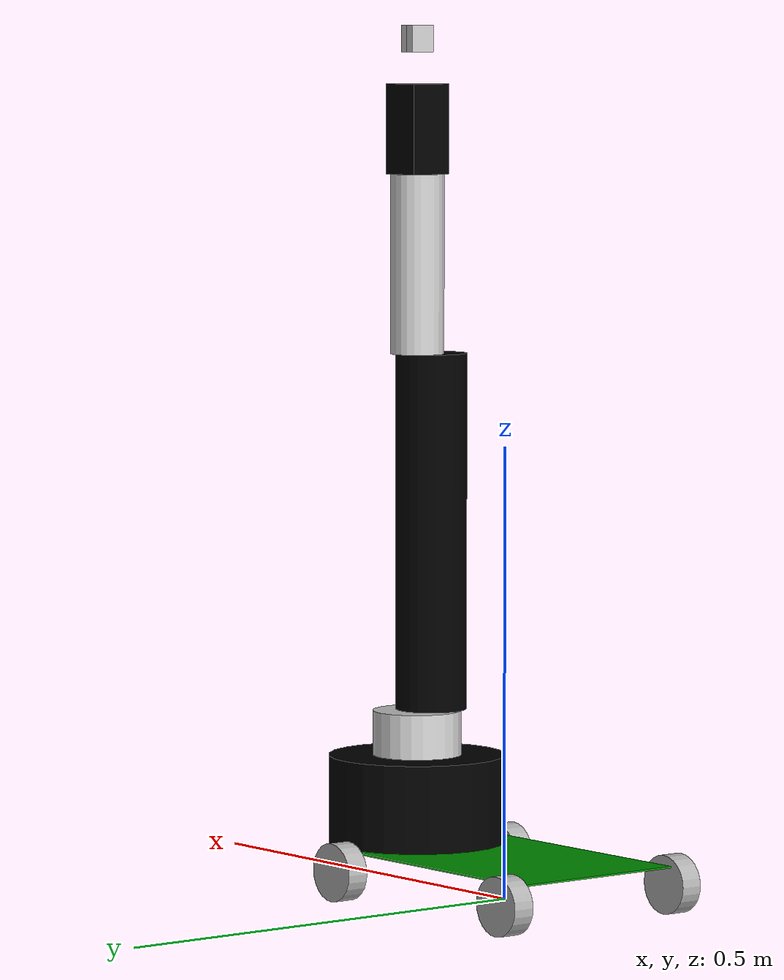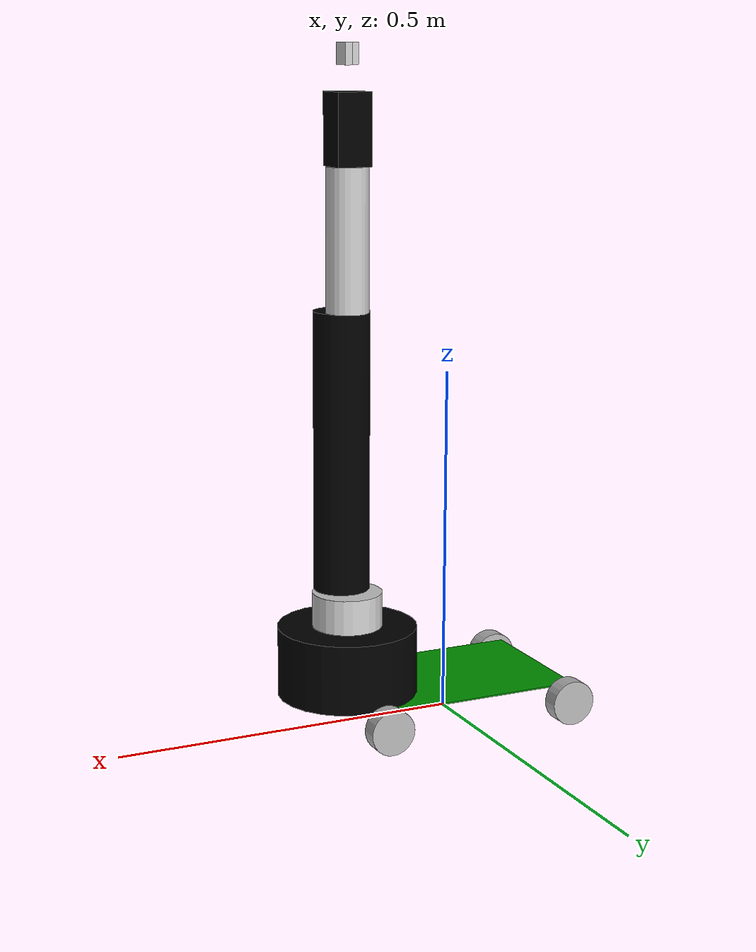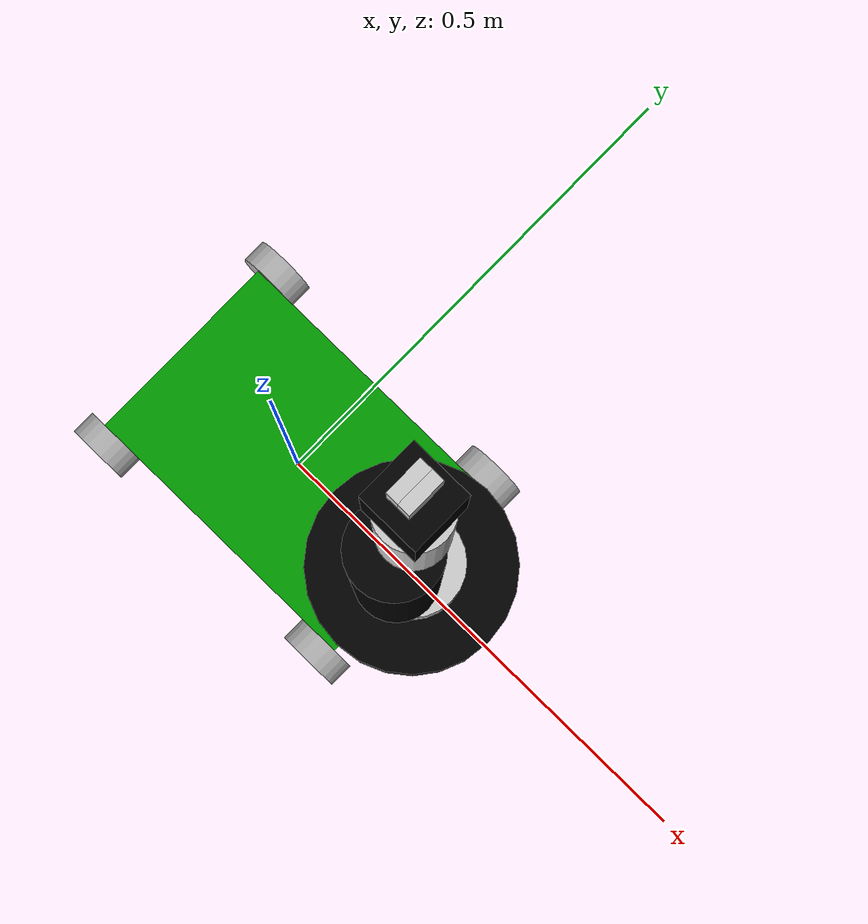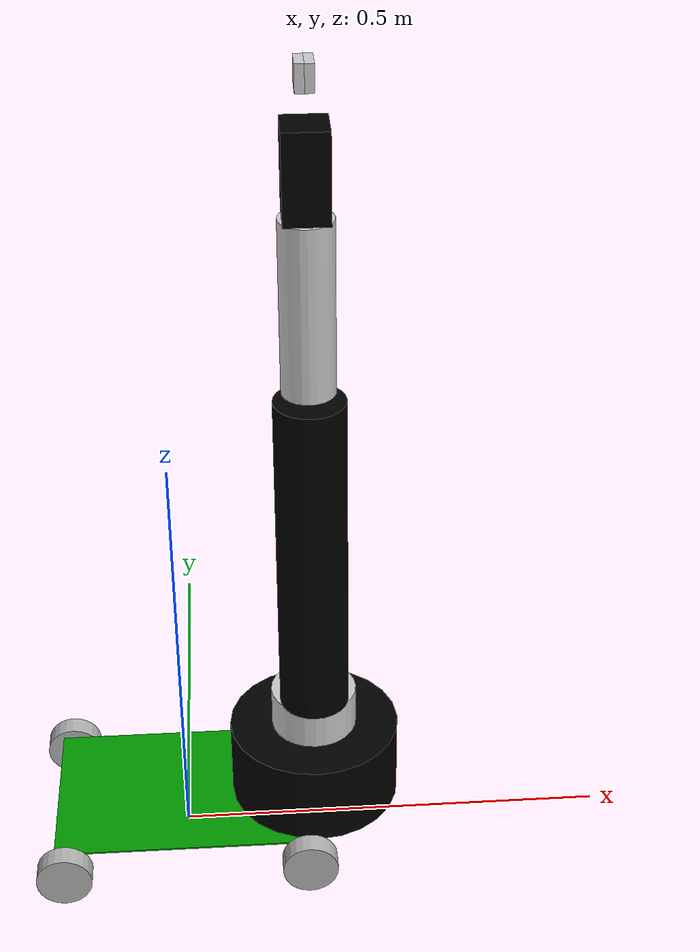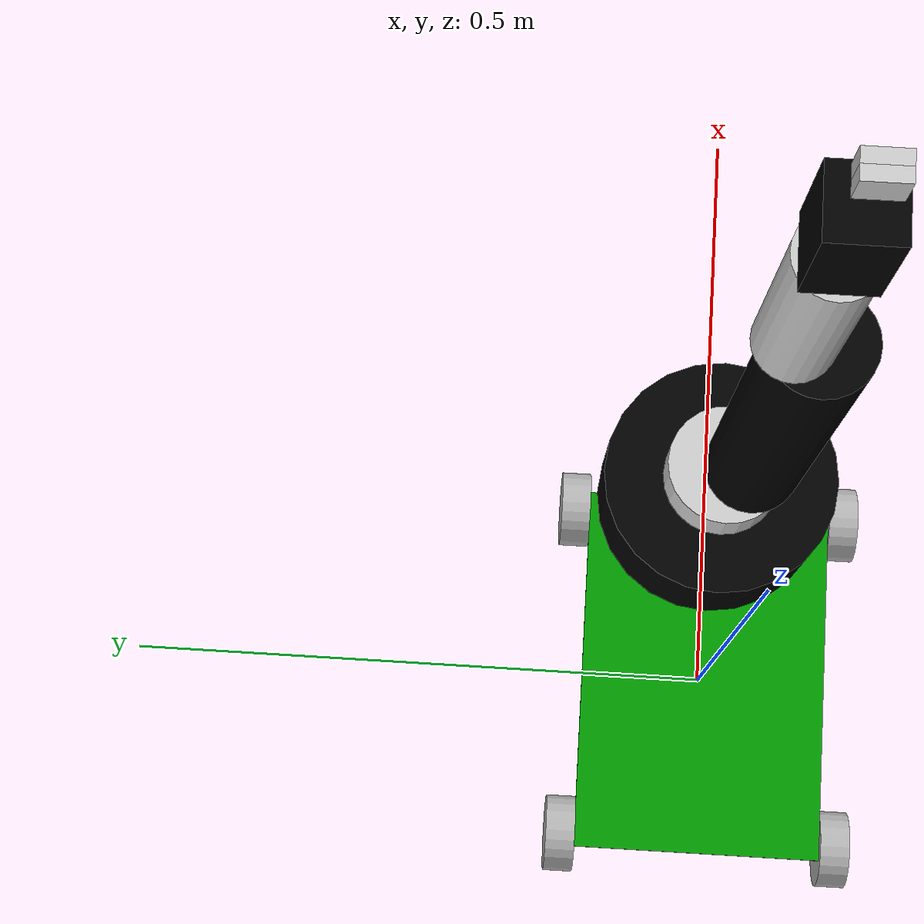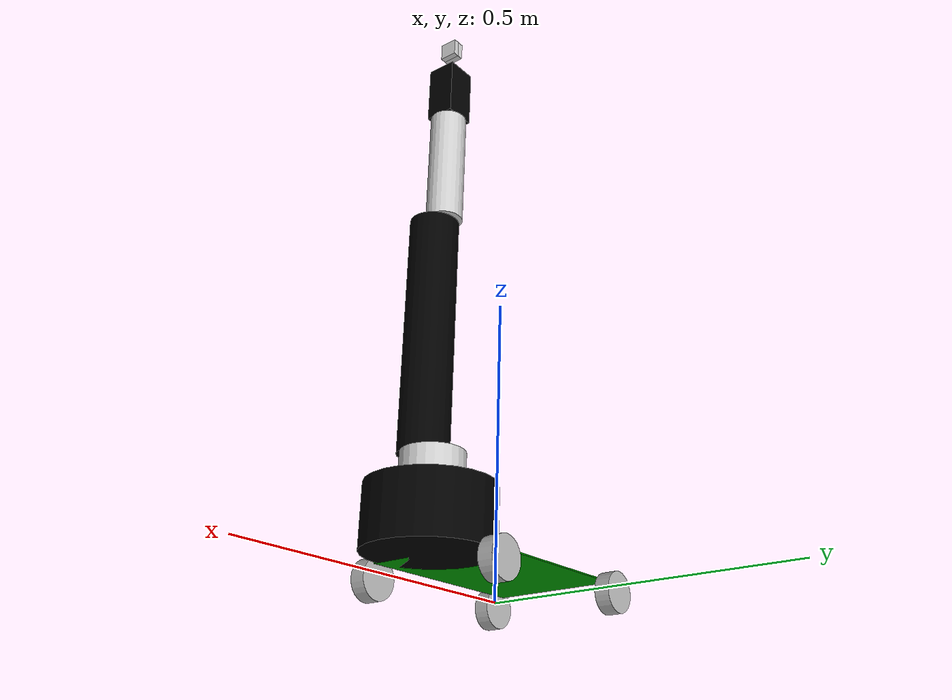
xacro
<?xml version="1.0"?>
<robot name="my_robot" xmlns:xacro="http://www.ros.org/wiki/xacro">

    <xacro:include filename="$(find mob_description)/urdf/mobile_base_gazebo.xacro" />
    <xacro:include filename="$(find mob_description)/urdf/common_properties.xacro" />
    <xacro:include filename="$(find mob_description)/urdf/mobile_base.xacro" />
    <xacro:include filename="$(find mob_description)/urdf/arm_base.xacro" />

</robot>

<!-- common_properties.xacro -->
<robot xmlns:xacro="http://www.ros.org/wiki/xacro">

    <material name="green">
        <color rgba="0 0.6 0 1" />
    </material>

  <material name="silver">
    <color rgba="0.8 0.8 0.8 1.0"/>
  </material>
    <material name="gray">
        <color rgba="0.7 0.7 0.7 1" />
    </material>

    <material name = "black">
        <color rgba="0 0 0 1"/>
    </material>

    <xacro:macro name="box_inertia" params="m x y z o_xyz o_rpy">
        <inertial>
            <mass value="${m}" />
            <origin xyz="${o_xyz}" rpy="${o_rpy}" />
            <inertia ixx="${(m/12) * (z*z + y*y)}" ixy="0" ixz="0"
                    iyy="${(m/12) * (x*x + z*z)}" iyz="0"
                    izz="${(m/12) * (x*x + y*y)}" />
        </inertial>
    </xacro:macro>

    <xacro:macro name="cylinder_inertia" params="m r l o_xyz o_rpy">
        <inertial>
            <mass value="${m}" />
            <origin xyz="${o_xyz}" rpy="${o_rpy}" />
            <inertia ixx="${(m/12) * (3*r*r + l*l)}" ixy="0" ixz="0"
                    iyy="${(m/12) * (3*r*r + l*l)}" iyz="0"
                    izz="${(m/2) * (r*r)}" />
        </inertial>
    </xacro:macro>

    <xacro:macro name="sphere_inertia" params="m r o_xyz o_rpy">
        <inertial>
            <mass value="${m}" />
            <origin xyz="${o_xyz}" rpy="${o_rpy}" />
            <inertia ixx="${(2/5) * m * r * r}" ixy="0" ixz="0"
                    iyy="${(2/5) * m * r * r}" iyz="0"
                    izz="${(2/5) * m * r * r}" />
        </inertial>
    </xacro:macro>

    <xacro:macro name="camera" params="width height hfov color">

    <visual>
        <geometry>
            <box size="0.015 0.040 0.030" />
        </geometry>
        <material name="${color}" />
        <origin xyz="0 0 0" rpy="0 0 0" />
    </visual>
    <visual>
        <geometry>
            <cylinder radius="0.010" length="0.015"/>
        </geometry>
        <material name="green" />
        <origin xyz="0.0075 0 0" rpy="0 ${pi / 2.0} 0" />
    </visual>
    <mass value = "0.1" />
        <inertia ixx="0.000166667" iyy = "0.000166667" izz="0.000166667" />
    </xacro:macro>

   <xacro:macro name="wheel_link" params="prefix">
        <link name="${prefix}_wheel_link">
            <visual>
                <geometry>
                    <cylinder radius="${wheel_radius}" length="${wheel_length}" />
                </geometry>
                <origin xyz="0 0 0" rpy="${pi / 2.0} 0 0" />
                <material name="gray" />
            </visual>
            <collision>
                <geometry>
                    <sphere radius="${wheel_radius}" />
                </geometry>
                <origin xyz="0 0 0" rpy="0 0 0" />
            </collision>
            <xacro:cylinder_inertia m="1.0" r="${wheel_radius}" l="${wheel_length}"
                                    o_xyz="0 0 0" o_rpy="${pi / 2.0} 0 0" />
        </link>
    </xacro:macro>

    <xacro:macro name = "wheel_joint" params = "child_prefix xyz xyz_axis">
        <joint name="base_${child_prefix}_wheel_joint" type="continuous">
            <parent link="base_link" />
            <child link="${child_prefix}_wheel_link" />
            <origin xyz="${xyz}" rpy="0 0 0" />
            <axis xyz="${xyz_axis}" />
        </joint>
    </xacro:macro>

<xacro:macro name="robo_link" params="name radius length material mass">

  <link name="${name}">
      <visual>
        <geometry>
          <cylinder length="${length}" radius="${radius}"/>
        </geometry>
          <origin xyz="0.0 0.0 ${length/2}" rpy="0.0 0.0 0.0"/>
        <material name="${material}"/>
      </visual>
      <collision>
          <geometry>
              <cylinder length="${length}" radius="${radius}"/>
          </geometry>
          <origin xyz="0.0 0.0 ${length/2}" rpy="0.0 0.0 0.0"/>
      </collision>
      <inertial>
          <mass value="${mass}" />
          <origin xyz="0 0 0" rpy="0 0 0" />
          <inertia ixx="${(mass/12) * (3*radius*radius + length*length)}" ixy="0" ixz="0"
                  iyy="${(mass/12) * (3*radius*radius + length*length)}" iyz="0"
                  izz="${(mass/2) * (radius*radius)}" />
      </inertial>
    </link>
</xacro:macro>

<xacro:macro name = "box_link" params = "name sx sy sz material mass">

  <link name="${name}">
    <visual>
      <geometry>
        <box size="${sx} ${sy} ${sz}"/>
      </geometry>
      <origin xyz="0.0 0.0 0.05" rpy="0.0 0.0 0.0"/>
      <material name="${material}"/>
    </visual>
    <collision>
      <geometry>
        <box size="${sx} ${sy} ${sz}"/>
      </geometry>
      <origin xyz="0.0 0.0 0.05" rpy="0.0 0.0 0.0"/>
    </collision>

  <inertial>
  <mass value="${mass}"/>
  <origin xyz="0 0 0" rpy="0 0 0" />
  <inertia ixx="${mass*(sy*sy + sz* sz)/12}" ixy="0.0" ixz="0.0" iyy="${mass*(sx*sx + sz* sz)/12}" iyz="0.0" izz="${mass*(sy*sy + sx* sx)/12}"/>
  </inertial>

  </link>

</xacro:macro>

<xacro:macro name="ros2_control_joint" params = "name mi ma">
  <joint name="${name}">

        <command_interface name = "position">
            <param name="min" value="${mi}"/>
            <param name="max" value="${ma}"/>
        </command_interface>

        <state_interface name = "velocity" />
        <state_interface name = "position"/>
    </joint>
</xacro:macro>

</robot>

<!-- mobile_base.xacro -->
<robot xmlns:xacro="http://www.ros.org/wiki/xacro">

    <xacro:property name="base_length" value="0.312" />
    <xacro:property name="base_width" value="0.2115" />
    <xacro:property name="base_height" value="0.002" />
    <xacro:property name="wheel_radius" value="0.0325" />
    <xacro:property name="wheel_length" value="0.025" />

    <link name="base_footprint" />

    <link name="base_link">
        <visual>
            <geometry>
                <box size="${base_length} ${base_width} ${base_height}" />
            </geometry>
            <origin xyz="0 0 ${base_height / 2.0}" rpy="0 0 0" />
            <material name="green" />
        </visual>
        <collision>
            <geometry>
                <box size="${base_length} ${base_width} ${base_height}" />
            </geometry>
            <origin xyz="0 0 ${base_height / 2.0}" rpy="0 0 0" />
        </collision>
        <xacro:box_inertia m="5.0" x="${base_length}" y="${base_width}" z="${base_height}"
                           o_xyz="0 0 ${base_height / 2.0}" o_rpy="0 0 0" />
    </link>

    <xacro:wheel_link prefix="right_back" />
    <xacro:wheel_link prefix="left_back" />
    <xacro:wheel_link prefix="right_front" />
    <xacro:wheel_link prefix="left_front" />

    <link name="camera_link">
        <xacro:camera width="640" height="480" hfov="1.3962634" color="black" />
    </link>

    <joint name="base_joint" type="fixed">
        <parent link="base_footprint" />
        <child link="base_link" />
        <origin xyz="0 0 ${wheel_radius+0.012}" rpy="0 0 0" />
    </joint>

    <xacro:wheel_joint child_prefix = "right_back" xyz = "${(-base_length / 2.0)+0.012} ${-(base_width + wheel_length) / 2.0} -0.020" xyz_axis = "0 1 0"/>
    <xacro:wheel_joint child_prefix = "left_back" xyz = "${(-base_length / 2.0)+0.012} ${(base_width + wheel_length) / 2.0} -0.020" xyz_axis = "0 1 0"/>
    <xacro:wheel_joint child_prefix = "left_front" xyz = "${(base_length / 2.0)-0.012} ${-(base_width + wheel_length) / 2.0} -0.020" xyz_axis = "0 1 0"/>
    <xacro:wheel_joint child_prefix = "right_front" xyz = "${(base_length / 2.0)-0.012} ${(base_width + wheel_length) / 2.0} -0.020" xyz_axis = "0 1 0"/>

    <joint name="base_camera_joint" type="fixed">
        <parent link="base_link"/>
        <child link="camera_link"/>
        <origin xyz="${base_length/2 - 0.050} 0.0 ${base_height+0.015}" rpy="0.0 0.0 0.0"/>
    </joint>

    <joint name = "robo_base_joint" type = "fixed">
        <parent link="base_link"/>
        <child link="base_robot_link"/>
        <origin xyz="${base_length/2.0} 0 0" rpy="0 0 0" />

    </joint>

</robot>

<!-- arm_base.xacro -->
<robot name="three_axis_arm" xmlns:xacro="http://ros.org/wiki/xacro">

<xacro:robo_link name="base_robot_link" radius= "0.1" length="0.1" material="black" mass="0.2"/>
<xacro:robo_link name="link_1" radius= "0.05" length="0.1" material="silver" mass="0.15"/>
<xacro:robo_link name="link_2" radius= "0.04" length="0.4" material="black" mass="0.45" />
<xacro:robo_link name="link_3" radius= "0.03" length="0.2" material="silver" mass="0.05" />
<xacro:box_link name="gripper" sx="0.05" sy="0.05" sz="0.1" material="black" mass="0.1"/>
<xacro:box_link name = "gripper_finger_1" sx="0.01" sy="0.03" sz="0.03" material="silver" mass="0.01"/>
<xacro:box_link name = "gripper_finger_2" sx="0.01" sy="0.03" sz="0.03" material="silver" mass="0.01"/>

  <!-- Joints and Links -->
  <!-- Joint 1 -->

  <joint name="joint_1" type="revolute">
    <parent link="base_robot_link"/>
    <child link="link_1"/>
    <origin xyz="0 0 0.05" rpy="0 0 0"/>
    <axis xyz="0 0 1"/>
    <limit lower="-3.14" upper="3.14" effort="10" velocity="1.0"/>
  </joint>
  <!-- Joint 2 -->
  <joint name="joint_2" type="revolute">
    <parent link="link_1"/>
    <child link="link_2"/>
    <origin xyz="0 -0.02 0.1" rpy="0 0 0"/>
    <axis xyz="0 1 0"/>
    <limit lower="-1.57" upper="1.57" effort="10" velocity="1.0"/>
  </joint>
  <!-- Joint 3 -->
  <joint name="joint_3" type="revolute">
    <parent link="link_2"/>
    <child link="link_3"/>
    <origin xyz="0 0.02 0.4" rpy="0 0 0"/>
    <axis xyz="0 1 0"/>
    <limit lower="-1.57" upper="1.57" effort="10" velocity="1.0"/>
  </joint>
  <!-- Gripper -->
  <joint name="gripper_joint" type="fixed">
    <parent link="link_3"/>
    <child link="gripper"/>
    <origin xyz="0 0.0 0.2" rpy="0 0 0"/>
  </joint>
  <!-- End Effector -->
  <joint name="gripper_finger_1_joint" type="prismatic">
    <parent link="gripper"/>
    <child link="gripper_finger_1"/>
    <origin xyz="0.005 0 0.1" rpy="0 0 0"/>
    <axis xyz="1 0 0"/>
    <limit lower="0" upper="0.025" effort="5" velocity="0.5"/>
  </joint>

  <joint name="gripper_finger_2_joint" type="prismatic">
    <parent link="gripper"/>
    <child link="gripper_finger_2"/>
    <origin xyz="-0.005 0 0.1" rpy="0 0 0"/>
    <axis xyz="-1 0 0"/>
    <limit lower="0" upper="0.025" effort="5" velocity="0.5"/>
  </joint>
</robot>
